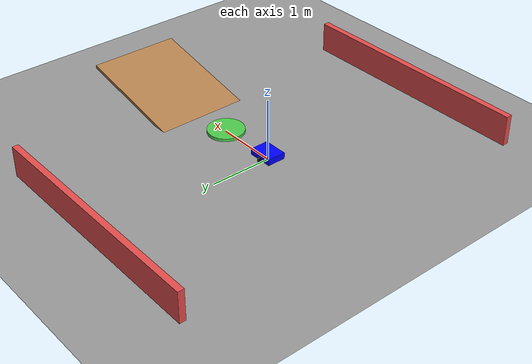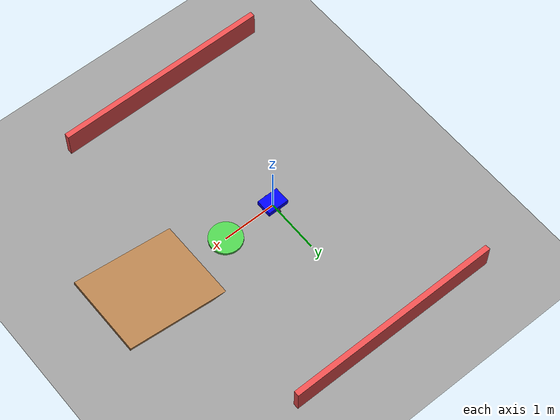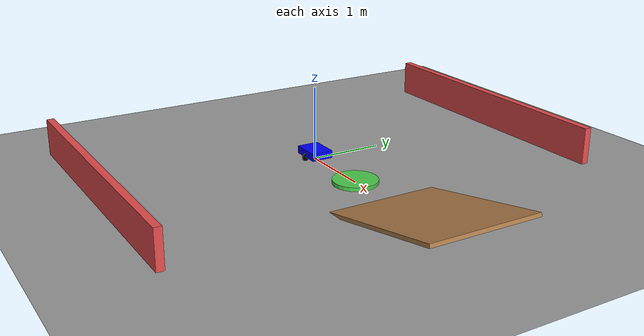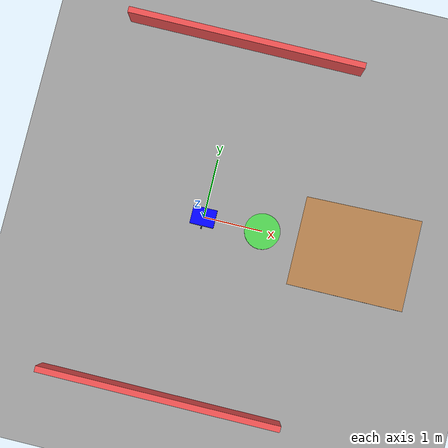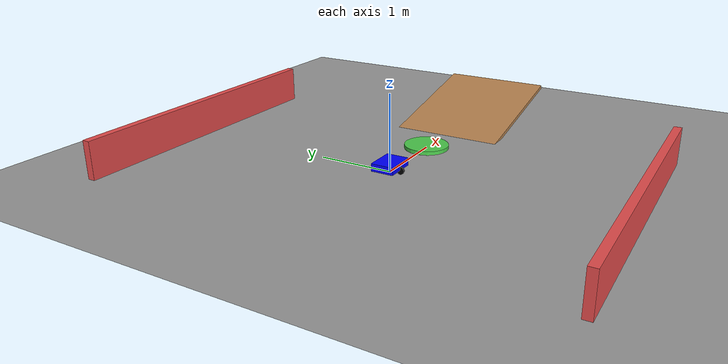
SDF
<?xml version="1.0"?>
<sdf version="1.8">
  <world name="imu_world">

    <!-- ========== SYSTEM PLUGINS ========== -->
    <plugin filename="gz-sim-physics-system"
            name="gz::sim::systems::Physics"/>
    <plugin filename="gz-sim-imu-system"
            name="gz::sim::systems::Imu"/>
    <plugin filename="gz-sim-scene-broadcaster-system"
            name="gz::sim::systems::SceneBroadcaster"/>
    <plugin filename="gz-sim-user-commands-system"
            name="gz::sim::systems::UserCommands"/>

    <!-- ========== PHYSICS ========== -->
    <physics name="default_physics" type="ode">
      <max_step_size>0.001</max_step_size>
      <real_time_factor>1.0</real_time_factor>
      <real_time_update_rate>1000</real_time_update_rate>
    </physics>

    <!-- ========== LIGHTING ========== -->
    <light name="sun" type="directional">
      <cast_shadows>true</cast_shadows>
      <pose>0 0 10 0 0 0</pose>
      <diffuse>0.9 0.9 0.9 1</diffuse>
      <specular>0.3 0.3 0.3 1</specular>
      <direction>-0.5 0.1 -0.9</direction>
    </light>

    <!-- ========== GROUND PLANE ========== -->
    <model name="ground_plane">
      <static>true</static>
      <link name="link">
        <collision name="collision">
          <geometry>
            <plane>
              <normal>0 0 1</normal>
              <size>20 20</size>
            </plane>
          </geometry>
          <surface>
            <friction>
              <ode>
                <mu>1.0</mu>
                <mu2>1.0</mu2>
              </ode>
            </friction>
          </surface>
        </collision>
        <visual name="visual">
          <geometry>
            <plane>
              <normal>0 0 1</normal>
              <size>20 20</size>
            </plane>
          </geometry>
          <material>
            <ambient>0.3 0.3 0.3 1</ambient>
            <diffuse>0.6 0.6 0.6 1</diffuse>
          </material>
        </visual>
      </link>
    </model>

    <!-- ========== BUMP ========== -->
    <model name="bump">
      <static>true</static>
      <pose>1.0 0 0.025 0 0 0</pose>
      <link name="link">
        <collision name="collision">
          <geometry>
            <cylinder>
              <radius>0.3</radius>
              <length>0.05</length>
            </cylinder>
          </geometry>
        </collision>
        <visual name="visual">
          <geometry>
            <cylinder>
              <radius>0.3</radius>
              <length>0.05</length>
            </cylinder>
          </geometry>
          <material>
            <ambient>0.2 0.7 0.2 1</ambient>
            <diffuse>0.3 0.8 0.3 1</diffuse>
          </material>
        </visual>
      </link>
    </model>

    <!-- ========== RAMP ========== -->
    <model name="ramp">
      <static>true</static>
      <pose>2.5 0 0.15 0 -0.2 0</pose>
      <link name="link">
        <collision name="collision">
          <geometry>
            <box>
              <size>2.0 1.5 0.05</size>
            </box>
          </geometry>
        </collision>
        <visual name="visual">
          <geometry>
            <box>
              <size>2.0 1.5 0.05</size>
            </box>
          </geometry>
          <material>
            <ambient>0.6 0.4 0.2 1</ambient>
            <diffuse>0.7 0.5 0.3 1</diffuse>
          </material>
        </visual>
      </link>
    </model>

    <!-- ========== WALL 1 ========== -->
    <model name="wall_1">
      <static>true</static>
      <pose>0 3 0.25 0 0 0</pose>
      <link name="link">
        <collision name="collision">
          <geometry>
            <box><size>4.0 0.1 0.5</size></box>
          </geometry>
        </collision>
        <visual name="visual">
          <geometry>
            <box><size>4.0 0.1 0.5</size></box>
          </geometry>
          <material>
            <ambient>0.8 0.2 0.2 1</ambient>
            <diffuse>0.9 0.3 0.3 1</diffuse>
          </material>
        </visual>
      </link>
    </model>

    <!-- ========== WALL 2 ========== -->
    <model name="wall_2">
      <static>true</static>
      <pose>0 -3 0.25 0 0 0</pose>
      <link name="link">
        <collision name="collision">
          <geometry>
            <box><size>4.0 0.1 0.5</size></box>
          </geometry>
        </collision>
        <visual name="visual">
          <geometry>
            <box><size>4.0 0.1 0.5</size></box>
          </geometry>
          <material>
            <ambient>0.8 0.2 0.2 1</ambient>
            <diffuse>0.9 0.3 0.3 1</diffuse>
          </material>
        </visual>
      </link>
    </model>

    <!-- ========== MOBILE ROBOT ========== -->
    <model name="mobile_robot">
      <pose>0 0 0.1 0 0 0</pose>

      <link name="base_link">
        <inertial>
          <mass>5.1</mass>
          <inertia>
            <ixx>0.101</ixx><ixy>0</ixy><ixz>0</ixz>
            <iyy>0.101</iyy><iyz>0</iyz>
            <izz>0.101</izz>
          </inertia>
        </inertial>
        <collision name="base_link_collision">
          <geometry>
            <box><size>0.4 0.3 0.1</size></box>
          </geometry>
        </collision>
        <visual name="base_link_visual">
          <geometry>
            <box><size>0.4 0.3 0.1</size></box>
          </geometry>
          <material>
            <ambient>0 0 1 1</ambient>
            <diffuse>0 0 1 1</diffuse>
          </material>
        </visual>

        <sensor name="imu_sensor" type="imu">
          <pose>0 0 0.05 0 0 0</pose>
          <always_on>true</always_on>
          <update_rate>__IMU_RATE_HZ__</update_rate>
          <topic>/imu/data</topic>
          <imu>
            <angular_velocity>
              <x><noise type="gaussian"><mean>0.0</mean><stddev>0.0002</stddev></noise></x>
              <y><noise type="gaussian"><mean>0.0</mean><stddev>0.0002</stddev></noise></y>
              <z><noise type="gaussian"><mean>0.0</mean><stddev>0.0002</stddev></noise></z>
            </angular_velocity>
            <linear_acceleration>
              <x><noise type="gaussian"><mean>0.0</mean><stddev>0.017</stddev></noise></x>
              <y><noise type="gaussian"><mean>0.0</mean><stddev>0.017</stddev></noise></y>
              <z><noise type="gaussian"><mean>0.0</mean><stddev>0.017</stddev></noise></z>
            </linear_acceleration>
          </imu>
        </sensor>

      </link>

      <joint name="left_wheel_joint" type="revolute">
        <parent>base_link</parent>
        <child>left_wheel</child>
        <pose relative_to="base_link">0 0.15 -0.05 0 1.57 0</pose>
        <axis>
          <xyz>0 0 1</xyz>
          <limit><lower>-1e+16</lower><upper>1e+16</upper></limit>
        </axis>
      </joint>

      <link name="left_wheel">
        <pose relative_to="left_wheel_joint">0 0 0 0 0 0</pose>
        <inertial>
          <mass>1.0</mass>
          <inertia>
            <ixx>0.01</ixx><ixy>0</ixy><ixz>0</ixz>
            <iyy>0.01</iyy><iyz>0</iyz><izz>0.01</izz>
          </inertia>
        </inertial>
        <collision name="left_wheel_collision">
          <geometry>
            <cylinder><radius>0.05</radius><length>0.02</length></cylinder>
          </geometry>
        </collision>
        <visual name="left_wheel_visual">
          <geometry>
            <cylinder><radius>0.05</radius><length>0.02</length></cylinder>
          </geometry>
          <material>
            <ambient>0 0 0 1</ambient>
            <diffuse>0 0 0 1</diffuse>
          </material>
        </visual>
      </link>

      <joint name="right_wheel_joint" type="revolute">
        <parent>base_link</parent>
        <child>right_wheel</child>
        <pose relative_to="base_link">0 -0.15 -0.05 0 1.57 0</pose>
        <axis>
          <xyz>0 0 1</xyz>
          <limit><lower>-1e+16</lower><upper>1e+16</upper></limit>
        </axis>
      </joint>

      <link name="right_wheel">
        <pose relative_to="right_wheel_joint">0 0 0 0 0 0</pose>
        <inertial>
          <mass>1.0</mass>
          <inertia>
            <ixx>0.01</ixx><ixy>0</ixy><ixz>0</ixz>
            <iyy>0.01</iyy><iyz>0</iyz><izz>0.01</izz>
          </inertia>
        </inertial>
        <collision name="right_wheel_collision">
          <geometry>
            <cylinder><radius>0.05</radius><length>0.02</length></cylinder>
          </geometry>
        </collision>
        <visual name="right_wheel_visual">
          <geometry>
            <cylinder><radius>0.05</radius><length>0.02</length></cylinder>
          </geometry>
          <material>
            <ambient>0 0 0 1</ambient>
            <diffuse>0 0 0 1</diffuse>
          </material>
        </visual>
      </link>

      <plugin filename="gz-sim-diff-drive-system"
              name="gz::sim::systems::DiffDrive">
        <left_joint>left_wheel_joint</left_joint>
        <right_joint>right_wheel_joint</right_joint>
        <wheel_separation>0.30</wheel_separation>
        <wheel_radius>0.05</wheel_radius>
        <topic>/cmd_vel</topic>
        <odom_topic>/odom</odom_topic>
        <frame_id>odom</frame_id>
        <child_frame_id>base_link</child_frame_id>
        <max_linear_acceleration>2.0</max_linear_acceleration>
        <max_angular_acceleration>4.0</max_angular_acceleration>
      </plugin>

    </model>

  </world>
</sdf>
